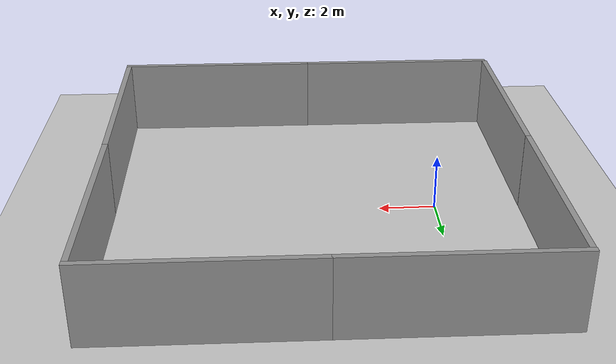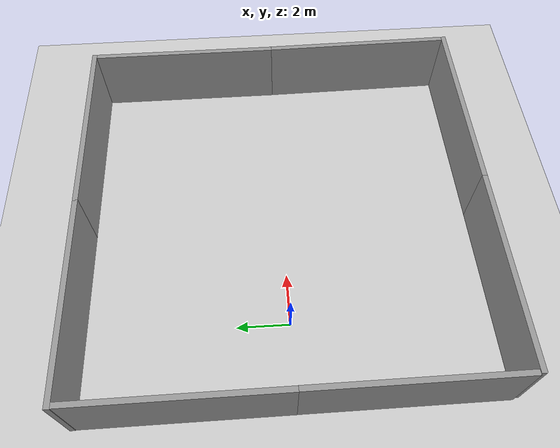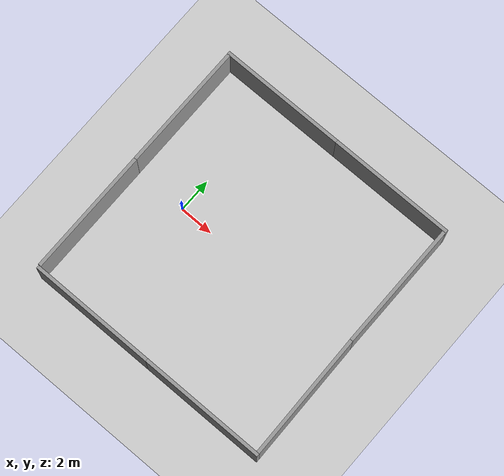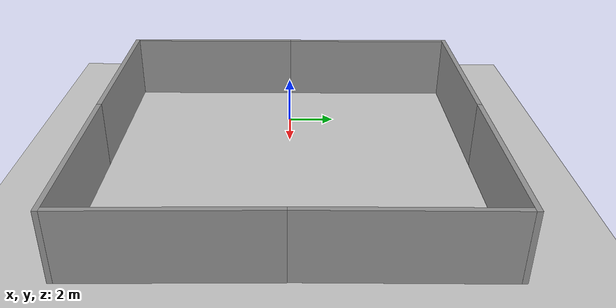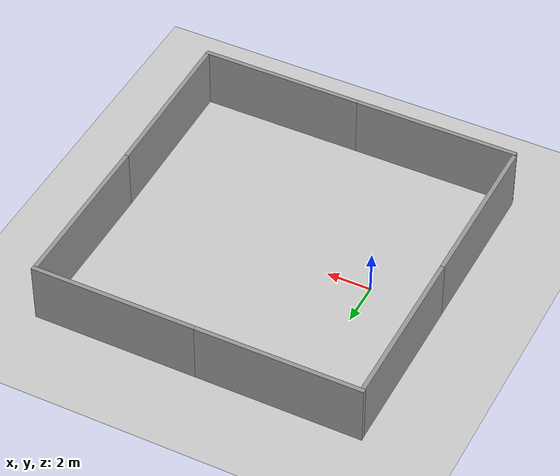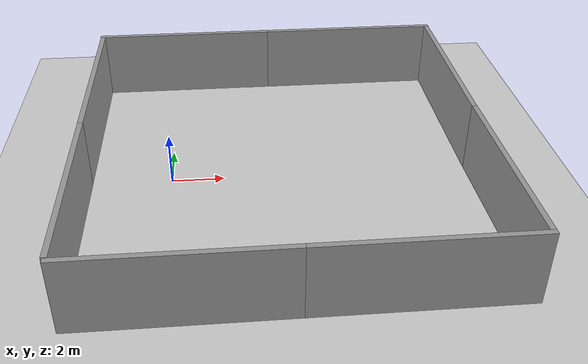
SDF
<sdf version="1.6">
 <world name="default">
  <light name="sun" type="directional">
   <pose>0 0 10 0 -0 0</pose>
   <diffuse>0.8 0.8 0.8 1</diffuse>
   <specular>0.2 0.2 0.2 1</specular>
   <attenuation>
    <range>1000</range>
    <constant>0.9</constant>
    <linear>0.01</linear>
    <quadratic>0.001</quadratic>
   </attenuation>
   <direction>-0.5 0.1 -0.9</direction>
  </light>
  <model name="ground_plane">
   <static>1</static>
   <link name="link">
    <collision name="collision">
     <geometry><plane><normal>0 0 1</normal><size>100 100</size></plane></geometry>
     <surface>
      <contact><collide_bitmask>65535</collide_bitmask></contact>
      <friction><ode><mu>100</mu><mu2>50</mu2></ode></friction>
     </surface>
    </collision>
    <visual name="visual">
     <cast_shadows>0</cast_shadows>
     <geometry><plane><normal>0 0 1</normal><size>100 100</size></plane></geometry>
     <material>
      <script><uri>file://media/materials/scripts/gazebo.material</uri><name>Gazebo/Grey</name></script>
     </material>
    </visual>
   </link>
  </model>
  <gravity>0 0 -9.8</gravity>
  <magnetic_field>6e-06 2.3e-05 -4.2e-05</magnetic_field>
  <atmosphere type="adiabatic"/>
  <physics name="default_physics" default="0" type="ode">
   <max_step_size>0.001</max_step_size>
   <real_time_factor>1</real_time_factor>
   <real_time_update_rate>1000</real_time_update_rate>
  </physics>
  <scene><ambient>0.4 0.4 0.4 1</ambient><background>0.7 0.7 0.7 1</background><shadows>1</shadows></scene>
  <audio><device>default</device></audio>
  <spherical_coordinates>
   <surface_model>EARTH_WGS84</surface_model>
   <latitude_deg>0</latitude_deg>
   <longitude_deg>0</longitude_deg>
   <elevation>0</elevation>
   <heading_deg>0</heading_deg>
  </spherical_coordinates>
  <model name="grey_wall">
   <static>1</static>
   <link name="link">
    <pose>0 0 1.4 0 -0 0</pose>
    <collision name="collision"><geometry><box><size>7.5 0.2 2.8</size></box></geometry></collision>
    <visual name="visual">
     <cast_shadows>0</cast_shadows>
     <geometry><box><size>7.5 0.2 2.8</size></box></geometry>
     <material>
      <script>
       <uri>model://grey_wall/materials/scripts</uri>
       <uri>model://grey_wall/materials/textures</uri>
       <name>vrc/grey_wall</name>
      </script>
     </material>
    </visual>
   </link>
   <pose>7.94748 7.59157 0 0 -0 0</pose>
  </model>
  <model name="grey_wall_0">
   <static>1</static>
   <link name="link">
    <pose>0 0 1.4 0 -0 0</pose>
    <collision name="collision"><geometry><box><size>7.5 0.2 2.8</size></box></geometry></collision>
    <visual name="visual">
     <cast_shadows>0</cast_shadows>
     <geometry><box><size>7.5 0.2 2.8</size></box></geometry>
     <material>
      <script>
       <uri>model://grey_wall/materials/scripts</uri>
       <uri>model://grey_wall/materials/textures</uri>
       <name>vrc/grey_wall</name>
      </script>
     </material>
    </visual>
   </link>
   <pose>0.482115 7.59068 0 0 -0 0</pose>
  </model>
  <model name="grey_wall_0_clone">
   <static>1</static>
   <link name="link">
    <pose>0 0 1.4 0 -0 0</pose>
    <collision name="collision"><geometry><box><size>7.5 0.2 2.8</size></box></geometry></collision>
    <visual name="visual">
     <cast_shadows>0</cast_shadows>
     <geometry><box><size>7.5 0.2 2.8</size></box></geometry>
     <material>
      <script>
       <uri>model://grey_wall/materials/scripts</uri>
       <uri>model://grey_wall/materials/textures</uri>
       <name>vrc/grey_wall</name>
      </script>
     </material>
    </visual>
   </link>
   <pose>8.04688 -7.59751 0 0 -0 0</pose>
  </model>
  <model name="grey_wall_0_clone_clone">
   <static>1</static>
   <link name="link">
    <pose>0 0 1.4 0 -0 0</pose>
    <collision name="collision"><geometry><box><size>7.5 0.2 2.8</size></box></geometry></collision>
    <visual name="visual">
     <cast_shadows>0</cast_shadows>
     <geometry><box><size>7.5 0.2 2.8</size></box></geometry>
     <material>
      <script>
       <uri>model://grey_wall/materials/scripts</uri>
       <uri>model://grey_wall/materials/textures</uri>
       <name>vrc/grey_wall</name>
      </script>
     </material>
    </visual>
   </link>
   <pose>0.548229 -7.59753 0 0 -0 0</pose>
  </model>
  <model name="grey_wall_0_clone_clone_0">
   <static>1</static>
   <link name="link">
    <pose>0 0 1.4 0 -0 0</pose>
    <collision name="collision"><geometry><box><size>7.5 0.2 2.8</size></box></geometry></collision>
    <visual name="visual">
     <cast_shadows>0</cast_shadows>
     <geometry><box><size>7.5 0.2 2.8</size></box></geometry>
     <material>
      <script>
       <uri>model://grey_wall/materials/scripts</uri>
       <uri>model://grey_wall/materials/textures</uri>
       <name>vrc/grey_wall</name>
      </script>
     </material>
    </visual>
   </link>
   <pose>11.5926 3.74367 0 0 0 -1.57165</pose>
  </model>
  <model name="grey_wall_0_clone_clone_1">
   <static>1</static>
   <link name="link">
    <pose>0 0 1.4 0 -0 0</pose>
    <collision name="collision"><geometry><box><size>7.5 0.2 2.8</size></box></geometry></collision>
    <visual name="visual">
     <cast_shadows>0</cast_shadows>
     <geometry><box><size>7.5 0.2 2.8</size></box></geometry>
     <material>
      <script>
       <uri>model://grey_wall/materials/scripts</uri>
       <uri>model://grey_wall/materials/textures</uri>
       <name>vrc/grey_wall</name>
      </script>
     </material>
    </visual>
   </link>
   <pose>11.6462 -3.75156 0 0 0 -1.55683</pose>
  </model>
  <model name="grey_wall_0_clone_clone_0_clone">
   <static>1</static>
   <link name="link">
    <pose>0 0 1.4 0 -0 0</pose>
    <collision name="collision"><geometry><box><size>7.5 0.2 2.8</size></box></geometry></collision>
    <visual name="visual">
     <cast_shadows>0</cast_shadows>
     <geometry><box><size>7.5 0.2 2.8</size></box></geometry>
     <material>
      <script>
       <uri>model://grey_wall/materials/scripts</uri>
       <uri>model://grey_wall/materials/textures</uri>
       <name>vrc/grey_wall</name>
      </script>
     </material>
    </visual>
   </link>
   <pose>-3.15784 3.76023 0 0 0 -1.57165</pose>
  </model>
  <model name="grey_wall_0_clone_clone_0_clone_clone">
   <static>1</static>
   <link name="link">
    <pose>0 0 1.4 0 -0 0</pose>
    <collision name="collision"><geometry><box><size>7.5 0.2 2.8</size></box></geometry></collision>
    <visual name="visual">
     <cast_shadows>0</cast_shadows>
     <geometry><box><size>7.5 0.2 2.8</size></box></geometry>
     <material>
      <script>
       <uri>model://grey_wall/materials/scripts</uri>
       <uri>model://grey_wall/materials/textures</uri>
       <name>vrc/grey_wall</name>
      </script>
     </material>
    </visual>
   </link>
   <pose>-3.15991 -3.73437 0 0 0 -1.57165</pose>
  </model>
 </world>
</sdf>
